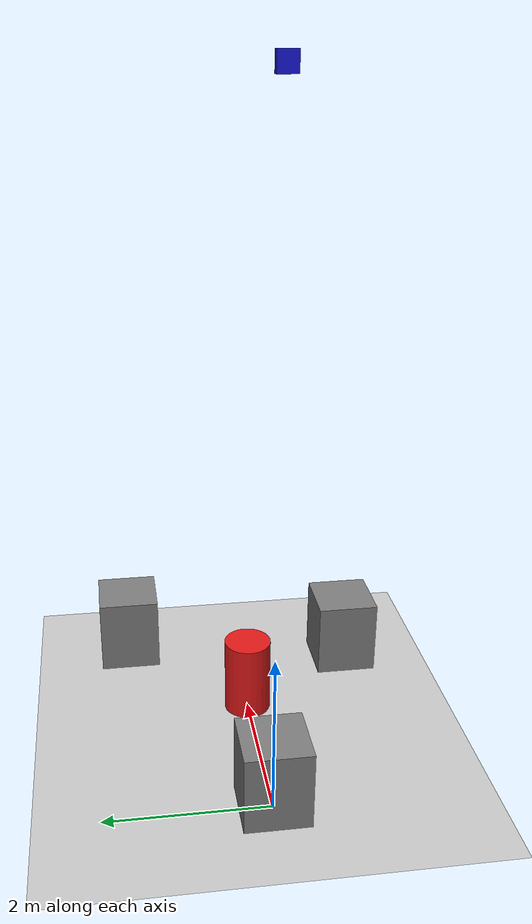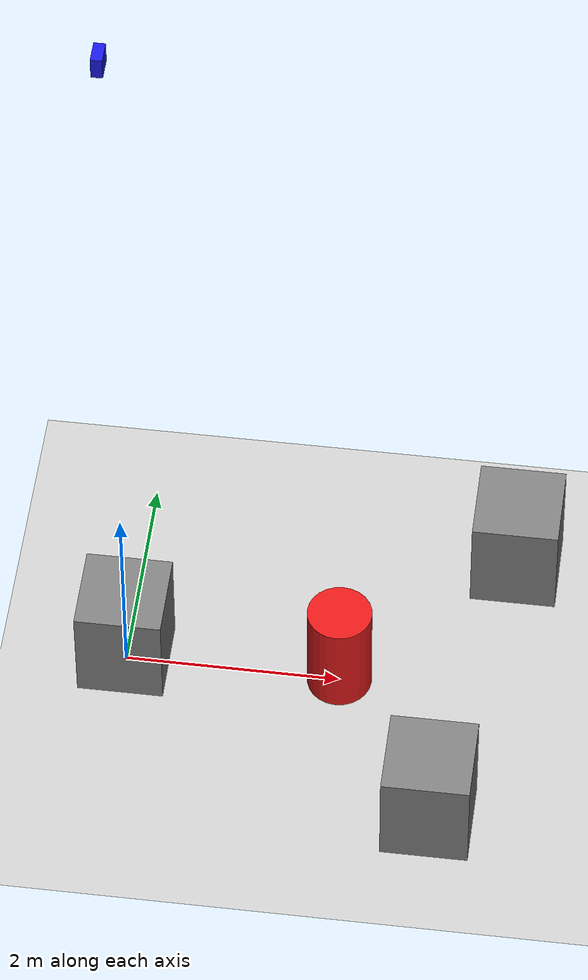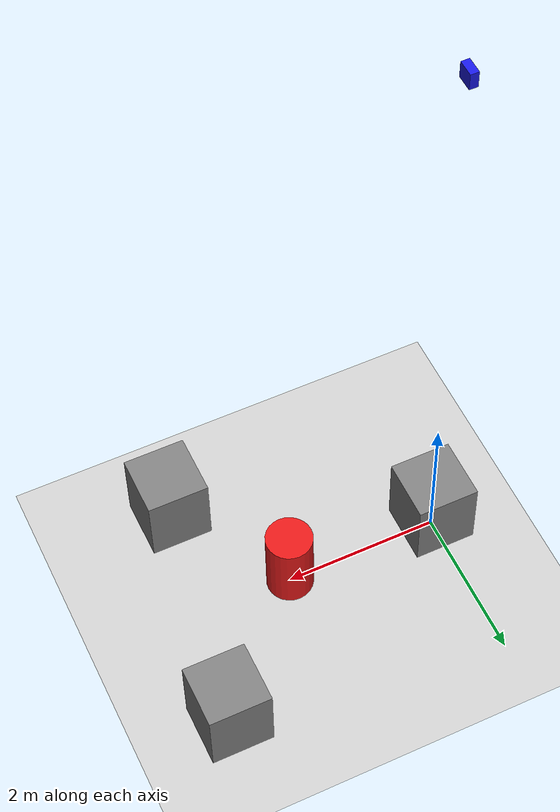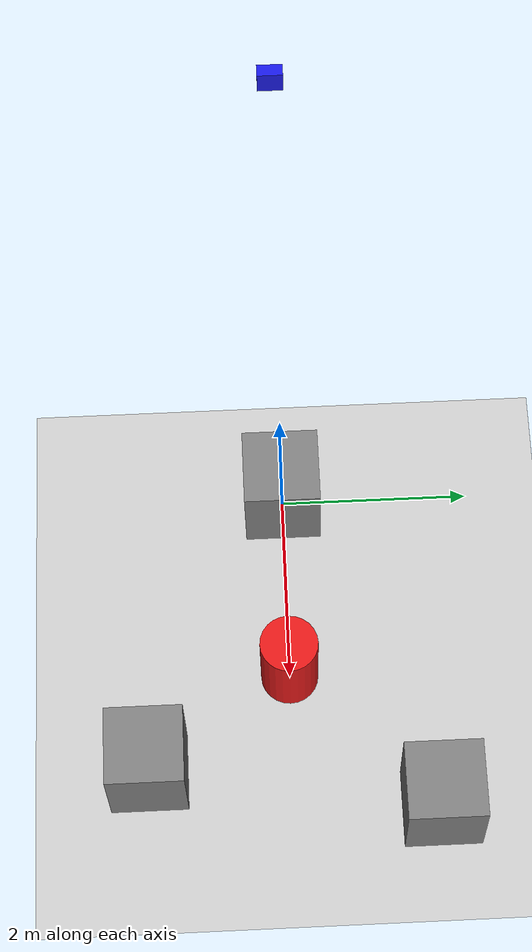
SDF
<?xml version="1.0" ?>
<sdf version="1.6">
  <world name="spartina_world">

    <!-- 조명 (햇빛) -->
    <include>
      <uri>model://sun</uri>
    </include>

    <!-- 바닥 -->
    <include>
      <uri>model://ground_plane</uri>
    </include>

    <model name="drone_camera">
      <!-- [이동버전] static=false + kinematic=true
           static 모델은 SetEntityState 로 옮겨도 pose 가 갱신되지 않는 경우가 있다.
           kinematic 은 중력/충돌力을 안 받으면서 SetWorldPose 로는 확실히 움직인다. -->
      <static>false</static>
      <!-- 높이 8m: 목표(2,0)까지 화면에 들어오도록 (5m는 x±1.6m라 기둥이 프레임 밖) -->
      <pose>0 0 8 0 1.5708 0</pose>
      <link name="camera_link">
        <kinematic>true</kinematic>
        <gravity>false</gravity>
        <inertial>
          <mass>0.1</mass>
          <inertia><ixx>1e-4</ixx><iyy>1e-4</iyy><izz>1e-4</izz>
                   <ixy>0</ixy><ixz>0</ixz><iyz>0</iyz></inertia>
        </inertial>
        <!-- 드론 위치를 눈으로 확인하기 위한 작은 파란 박스 -->
        <visual name="visual">
          <geometry>
            <box><size>0.2 0.2 0.1</size></box>
          </geometry>
          <material>
            <ambient>0.1 0.1 0.8 1</ambient>
            <diffuse>0.1 0.1 0.9 1</diffuse>
          </material>
        </visual>
        <sensor type="camera" name="drone_camera_sensor">
          <update_rate>10</update_rate>
          <always_on>true</always_on>
          <camera>
            <!-- HFOV 1.047rad(60°) + 640px → fx = 320/tan(30°) ≈ 554.3
                 (2번 파트가 검증에 쓴 K_SIM 값과 일치) -->
            <horizontal_fov>1.047</horizontal_fov>
            <image>
              <width>640</width>
              <height>480</height>
              <format>R8G8B8</format>
            </image>
            <clip>
              <near>0.1</near>
              <far>100</far>
            </clip>
          </camera>
          <plugin name="drone_camera_controller" filename="libgazebo_ros_camera.so">
            <!-- camera_name=drone → /drone/image_raw, /drone/camera_info
                 (waffle 자체 온보드 카메라가 /camera/* 를 쓰므로 충돌 방지 위해 분리) -->
            <camera_name>drone</camera_name>
            <!-- 헤더 frame_id. 실제 TF(world→drone_camera_optical)는
                 런치 파일의 static_transform_publisher 가 발행 -->
            <frame_name>drone_camera_optical</frame_name>
          </plugin>
        </sensor>
      </link>
    </model>

    <!-- 목표 지점: 빨간 원기둥 (갯끈풀) — (5,0)→(2,0) 이동 -->
    <!-- collision 추가 → 라이다가 실제 장애물로 인식, 로봇이 통과 못 하고 앞에서 멈춤 -->
    <model name="target_spartina">
      <static>true</static>
      <pose>2 0 0.5 0 0 0</pose>
      <link name="link">
        <collision name="collision">
          <geometry>
            <cylinder>
              <radius>0.3</radius>
              <length>1.0</length>
            </cylinder>
          </geometry>
        </collision>
        <visual name="visual">
          <geometry>
            <cylinder>
              <radius>0.3</radius>
              <length>1.0</length>
            </cylinder>
          </geometry>
          <material>
            <ambient>0.8 0.1 0.1 1</ambient>
            <diffuse>0.9 0.1 0.1 1</diffuse>
          </material>
        </visual>
      </link>
    </model>

    <!-- 장애물 1 : 로봇(-2,0)→목표(2,0) 경로 한가운데. 회피 시연용 -->
    <model name="obstacle_1">
      <static>true</static>
      <pose>0 0 0.5 0 0 0</pose>
      <link name="link">
        <collision name="collision">
          <geometry>
            <box><size>0.8 0.8 1.0</size></box>
          </geometry>
        </collision>
        <visual name="visual">
          <geometry>
            <box><size>0.8 0.8 1.0</size></box>
          </geometry>
          <material>
            <ambient>0.4 0.4 0.4 1</ambient>
            <diffuse>0.5 0.5 0.5 1</diffuse>
          </material>
        </visual>
      </link>
    </model>

    <!-- 장애물 2 -->
    <model name="obstacle_2">
      <static>true</static>
      <pose>3 -1.5 0.5 0 0 0</pose>
      <link name="link">
        <collision name="collision">
          <geometry>
            <box><size>0.8 0.8 1.0</size></box>
          </geometry>
        </collision>
        <visual name="visual">
          <geometry>
            <box><size>0.8 0.8 1.0</size></box>
          </geometry>
          <material>
            <ambient>0.4 0.4 0.4 1</ambient>
            <diffuse>0.5 0.5 0.5 1</diffuse>
          </material>
        </visual>
      </link>
    </model>

    <!-- 장애물 3 -->
    <model name="obstacle_3">
      <static>true</static>
      <pose>3.5 1.5 0.5 0 0 0</pose>
      <link name="link">
        <collision name="collision">
          <geometry>
            <box><size>0.8 0.8 1.0</size></box>
          </geometry>
        </collision>
        <visual name="visual">
          <geometry>
            <box><size>0.8 0.8 1.0</size></box>
          </geometry>
          <material>
            <ambient>0.4 0.4 0.4 1</ambient>
            <diffuse>0.5 0.5 0.5 1</diffuse>
          </material>
        </visual>
      </link>
    </model>

    <plugin name="gazebo_ros_state" filename="libgazebo_ros_state.so">
      <ros>
        <namespace>/gazebo</namespace>
      </ros>
      <update_rate>50.0</update_rate>
    </plugin>

  </world>
</sdf>
